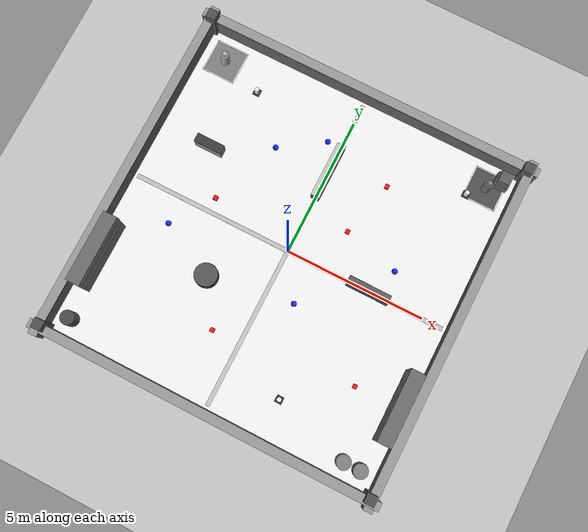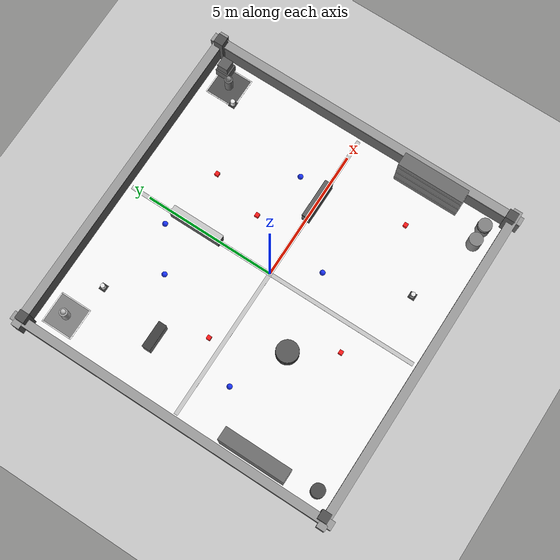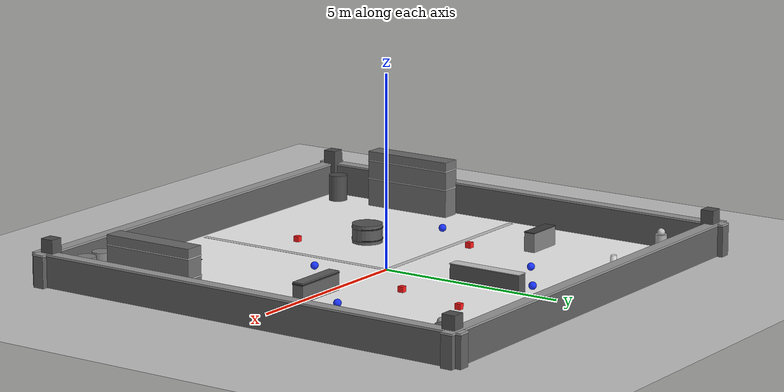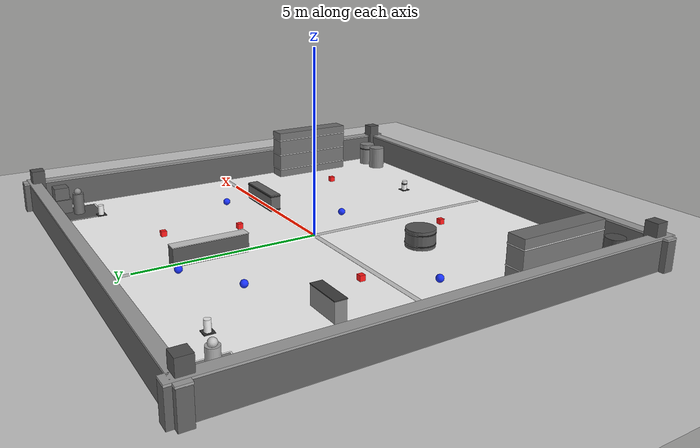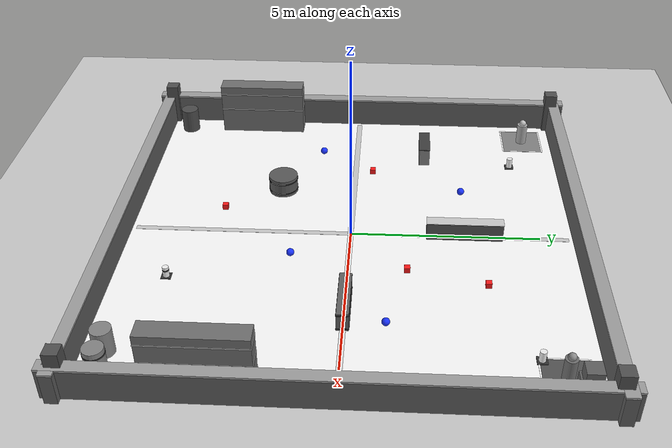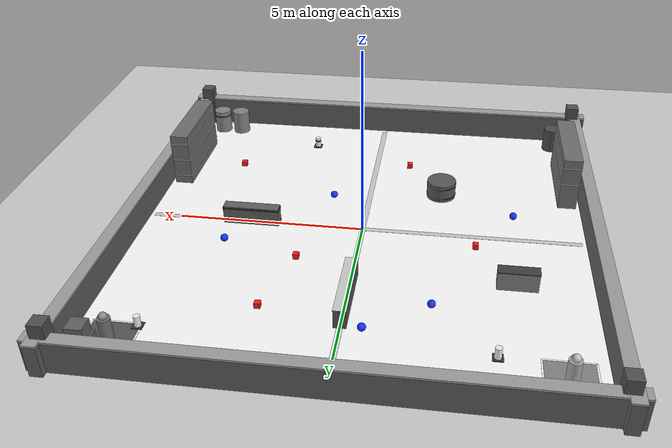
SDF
<?xml version="1.0" ?>
<sdf version="1.6">
  <world name="arena">

    <include><uri>model://ground_plane</uri></include>
    <include><uri>model://sun</uri></include>

    <!-- ==================== LIGHTING ==================== -->
    <scene>
      <ambient>0.506 0.506 0.506 1</ambient>
      <background>0.170 0.170 0.170 1</background>
      <shadows>true</shadows>
    </scene>

    <physics type="ode">
      <max_step_size>0.001</max_step_size>
      <real_time_factor>1</real_time_factor>
      <real_time_update_rate>1000</real_time_update_rate>
    </physics>

    <!-- ==================== WAREHOUSE FLOOR ==================== -->
    <model name="warehouse_floor"><static>true</static>
      <link name="link">
        <visual name="v">
          <geometry><box><size>12.3 12.3 0.002</size></box></geometry>
          <material>
            <ambient>1 1 1 1</ambient>
            <diffuse>1 1 1 1</diffuse>
            <specular>0.1 0.1 0.1 1</specular>
          </material>
        </visual>
      </link>
      <pose>0 0 0.001 0 0 0</pose>
    </model>

    <!-- Yellow safety stripes -->
    <model name="stripe_h"><static>true</static>
      <link name="link">
        <visual name="v"><geometry><box><size>11.5 0.15 0.004</size></box></geometry>
          <material><ambient>0.694 0.694 0.694 1</ambient><diffuse>0.798 0.798 0.798 1</diffuse></material>
        </visual>
      </link>
      <pose>0 0 0.003 0 0 0</pose>
    </model>
    <model name="stripe_v"><static>true</static>
      <link name="link">
        <visual name="v"><geometry><box><size>0.15 11.5 0.004</size></box></geometry>
          <material><ambient>0.694 0.694 0.694 1</ambient><diffuse>0.798 0.798 0.798 1</diffuse></material>
        </visual>
      </link>
      <pose>0 0 0.003 0 0 0</pose>
    </model>

    <!-- ==================== BOUNDARY WALLS (dark slate) ==================== -->
    <model name="wall_north"><static>true</static>
      <link name="link">
        <collision name="c"><geometry><box><size>12.6 0.3 0.8</size></box></geometry></collision>
        <visual name="v"><geometry><box><size>12.6 0.3 0.8</size></box></geometry>
          <material><ambient>0.276 0.276 0.276 1</ambient><diffuse>0.376 0.376 0.376 1</diffuse><specular>0.300 0.300 0.300 1</specular></material>
        </visual>
      </link>
      <pose>0 6 0.4 0 0 0</pose>
    </model>
    <model name="wall_south"><static>true</static>
      <link name="link">
        <collision name="c"><geometry><box><size>12.6 0.3 0.8</size></box></geometry></collision>
        <visual name="v"><geometry><box><size>12.6 0.3 0.8</size></box></geometry>
          <material><ambient>0.276 0.276 0.276 1</ambient><diffuse>0.376 0.376 0.376 1</diffuse><specular>0.300 0.300 0.300 1</specular></material>
        </visual>
      </link>
      <pose>0 -6 0.4 0 0 0</pose>
    </model>
    <model name="wall_east"><static>true</static>
      <link name="link">
        <collision name="c"><geometry><box><size>0.3 12.6 0.8</size></box></geometry></collision>
        <visual name="v"><geometry><box><size>0.3 12.6 0.8</size></box></geometry>
          <material><ambient>0.276 0.276 0.276 1</ambient><diffuse>0.376 0.376 0.376 1</diffuse><specular>0.300 0.300 0.300 1</specular></material>
        </visual>
      </link>
      <pose>6 0 0.4 0 0 0</pose>
    </model>
    <model name="wall_west"><static>true</static>
      <link name="link">
        <collision name="c"><geometry><box><size>0.3 12.6 0.8</size></box></geometry></collision>
        <visual name="v"><geometry><box><size>0.3 12.6 0.8</size></box></geometry>
          <material><ambient>0.276 0.276 0.276 1</ambient><diffuse>0.376 0.376 0.376 1</diffuse><specular>0.300 0.300 0.300 1</specular></material>
        </visual>
      </link>
      <pose>-6 0 0.4 0 0 0</pose>
    </model>

    <!-- Orange wall caps (far from any cube/sphere & distinct hue) -->
    <model name="wall_top_n"><static>true</static>
      <link name="link">
        <visual name="v"><geometry><box><size>12.6 0.32 0.05</size></box></geometry>
          <material><ambient>0.518 0.518 0.518 1</ambient><diffuse>0.628 0.628 0.628 1</diffuse></material>
        </visual>
      </link>
      <pose>0 6 0.82 0 0 0</pose>
    </model>
    <model name="wall_top_s"><static>true</static>
      <link name="link">
        <visual name="v"><geometry><box><size>12.6 0.32 0.05</size></box></geometry>
          <material><ambient>0.518 0.518 0.518 1</ambient><diffuse>0.628 0.628 0.628 1</diffuse></material>
        </visual>
      </link>
      <pose>0 -6 0.82 0 0 0</pose>
    </model>
    <model name="wall_top_e"><static>true</static>
      <link name="link">
        <visual name="v"><geometry><box><size>0.32 12.6 0.05</size></box></geometry>
          <material><ambient>0.518 0.518 0.518 1</ambient><diffuse>0.628 0.628 0.628 1</diffuse></material>
        </visual>
      </link>
      <pose>6 0 0.82 0 0 0</pose>
    </model>
    <model name="wall_top_w"><static>true</static>
      <link name="link">
        <visual name="v"><geometry><box><size>0.32 12.6 0.05</size></box></geometry>
          <material><ambient>0.518 0.518 0.518 1</ambient><diffuse>0.628 0.628 0.628 1</diffuse></material>
        </visual>
      </link>
      <pose>-6 0 0.82 0 0 0</pose>
    </model>

    <!-- Corner pillars (charcoal) -->
    <model name="pillar_ne"><static>true</static>
      <link name="link">
        <collision name="c"><geometry><box><size>0.35 0.35 1.2</size></box></geometry></collision>
        <visual name="v"><geometry><box><size>0.35 0.35 1.2</size></box></geometry>
          <material><ambient>0.200 0.200 0.200 1</ambient><diffuse>0.321 0.321 0.321 1</diffuse></material>
        </visual>
      </link>
      <pose>5.9 5.9 0.6 0 0 0</pose>
    </model>
    <model name="pillar_nw"><static>true</static>
      <link name="link">
        <collision name="c"><geometry><box><size>0.35 0.35 1.2</size></box></geometry></collision>
        <visual name="v"><geometry><box><size>0.35 0.35 1.2</size></box></geometry>
          <material><ambient>0.200 0.200 0.200 1</ambient><diffuse>0.321 0.321 0.321 1</diffuse></material>
        </visual>
      </link>
      <pose>-5.9 5.9 0.6 0 0 0</pose>
    </model>
    <model name="pillar_se"><static>true</static>
      <link name="link">
        <collision name="c"><geometry><box><size>0.35 0.35 1.2</size></box></geometry></collision>
        <visual name="v"><geometry><box><size>0.35 0.35 1.2</size></box></geometry>
          <material><ambient>0.200 0.200 0.200 1</ambient><diffuse>0.321 0.321 0.321 1</diffuse></material>
        </visual>
      </link>
      <pose>5.9 -5.9 0.6 0 0 0</pose>
    </model>
    <model name="pillar_sw"><static>true</static>
      <link name="link">
        <collision name="c"><geometry><box><size>0.35 0.35 1.2</size></box></geometry></collision>
        <visual name="v"><geometry><box><size>0.35 0.35 1.2</size></box></geometry>
          <material><ambient>0.200 0.200 0.200 1</ambient><diffuse>0.321 0.321 0.321 1</diffuse></material>
        </visual>
      </link>
      <pose>-5.9 -5.9 0.6 0 0 0</pose>
    </model>

    <!-- ==================== OBSTACLES (color-safe) ==================== -->
    <!-- obs_box_1: Wooden crate — BROWN (safe) -->
    <model name="obs_box_1"><static>true</static>
      <link name="link">
        <collision name="c"><geometry><box><size>1.5 0.3 0.5</size></box></geometry></collision>
        <visual name="v"><geometry><box><size>1.5 0.3 0.5</size></box></geometry>
          <material><ambient>0.278 0.278 0.278 1</ambient><diffuse>0.387 0.387 0.387 1</diffuse></material>
        </visual>
        <visual name="band1"><pose>0 0 0.2 0 0 0</pose>
          <geometry><box><size>1.52 0.32 0.03</size></box></geometry>
          <material><ambient>0.120 0.120 0.120 1</ambient><diffuse>0.200 0.200 0.200 1</diffuse></material>
        </visual>
        <visual name="band2"><pose>0 0 -0.2 0 0 0</pose>
          <geometry><box><size>1.52 0.32 0.03</size></box></geometry>
          <material><ambient>0.120 0.120 0.120 1</ambient><diffuse>0.200 0.200 0.200 1</diffuse></material>
        </visual>
      </link>
      <pose>3 0 0.25 0 0 0</pose>
    </model>

    <!-- obs_cyl_1: Industrial barrel — GRAPHITE GRAY (no red anymore) -->
    <model name="obs_cyl_1"><static>true</static>
      <link name="link">
        <collision name="c"><geometry><cylinder><radius>0.4</radius><length>0.5</length></cylinder></geometry></collision>
        <visual name="v"><geometry><cylinder><radius>0.4</radius><length>0.5</length></cylinder></geometry>
          <material><ambient>0.220 0.220 0.220 1</ambient><diffuse>0.350 0.350 0.350 1</diffuse><specular>0.500 0.500 0.500 1</specular></material>
        </visual>
        <visual name="ring1"><pose>0 0 0.15 0 0 0</pose>
          <geometry><cylinder><radius>0.41</radius><length>0.03</length></cylinder></geometry>
          <material><ambient>0.100 0.100 0.100 1</ambient><diffuse>0.150 0.150 0.150 1</diffuse></material>
        </visual>
        <visual name="ring2"><pose>0 0 -0.15 0 0 0</pose>
          <geometry><cylinder><radius>0.41</radius><length>0.03</length></cylinder></geometry>
          <material><ambient>0.100 0.100 0.100 1</ambient><diffuse>0.150 0.150 0.150 1</diffuse></material>
        </visual>
      </link>
      <pose>-2 -2 0.25 0 0 0</pose>
    </model>

    <!-- obs_box_2: Shelving unit — DARK TEAL (no blue) -->
    <model name="obs_box_2"><static>true</static>
      <link name="link">
        <collision name="c"><geometry><box><size>0.3 2.0 0.5</size></box></geometry></collision>
        <visual name="v"><geometry><box><size>0.3 2.0 0.5</size></box></geometry>
          <material><ambient>0.242 0.242 0.242 1</ambient><diffuse>0.328 0.328 0.328 1</diffuse><specular>0.300 0.300 0.300 1</specular></material>
        </visual>
        <visual name="shelf_top"><pose>0 0 0.25 0 0 0</pose>
          <geometry><box><size>0.32 2.02 0.02</size></box></geometry>
          <material><ambient>0.665 0.665 0.665 1</ambient><diffuse>0.809 0.809 0.809 1</diffuse></material>
        </visual>
      </link>
      <pose>0 3 0.25 0 0 0</pose>
    </model>

    <!-- obs_box_3: Wooden pallet crate — LIGHT BROWN -->
    <model name="obs_box_3"><static>true</static>
      <link name="link">
        <collision name="c"><geometry><box><size>1.0 0.3 0.5</size></box></geometry></collision>
        <visual name="v"><geometry><box><size>1.0 0.3 0.5</size></box></geometry>
          <material><ambient>0.351 0.351 0.351 1</ambient><diffuse>0.514 0.514 0.514 1</diffuse></material>
        </visual>
        <visual name="plate"><pose>0 0 0.26 0 0 0</pose>
          <geometry><box><size>1.02 0.32 0.02</size></box></geometry>
          <material><ambient>0.150 0.150 0.150 1</ambient><diffuse>0.250 0.250 0.250 1</diffuse></material>
        </visual>
      </link>
      <pose>-4 2 0.25 0 0 0</pose>
    </model>

    <!-- ==================== DECORATIVE PROPS ==================== -->
    <!-- East shelving — SLATE GRAY -->
    <model name="shelf_east_1"><static>true</static>
      <link name="link">
        <collision name="c"><geometry><box><size>0.5 2.5 1.5</size></box></geometry></collision>
        <visual name="v"><geometry><box><size>0.5 2.5 1.5</size></box></geometry>
          <material><ambient>0.300 0.300 0.300 1</ambient><diffuse>0.441 0.441 0.441 1</diffuse></material>
        </visual>
        <visual name="shelf_a"><pose>0 0 0.5 0 0 0</pose>
          <geometry><box><size>0.52 2.52 0.03</size></box></geometry>
          <material><ambient>0.665 0.665 0.665 1</ambient><diffuse>0.809 0.809 0.809 1</diffuse></material>
        </visual>
        <visual name="shelf_b"><pose>0 0 0 0 0 0</pose>
          <geometry><box><size>0.52 2.52 0.03</size></box></geometry>
          <material><ambient>0.665 0.665 0.665 1</ambient><diffuse>0.809 0.809 0.809 1</diffuse></material>
        </visual>
        <visual name="shelf_c"><pose>0 0 -0.5 0 0 0</pose>
          <geometry><box><size>0.52 2.52 0.03</size></box></geometry>
          <material><ambient>0.665 0.665 0.665 1</ambient><diffuse>0.809 0.809 0.809 1</diffuse></material>
        </visual>
      </link>
      <pose>5.5 -3 0.75 0 0 0</pose>
    </model>

    <!-- West shelving — SLATE GRAY -->
    <model name="shelf_west_1"><static>true</static>
      <link name="link">
        <collision name="c"><geometry><box><size>0.5 2.5 1.5</size></box></geometry></collision>
        <visual name="v"><geometry><box><size>0.5 2.5 1.5</size></box></geometry>
          <material><ambient>0.300 0.300 0.300 1</ambient><diffuse>0.441 0.441 0.441 1</diffuse></material>
        </visual>
        <visual name="shelf_a"><pose>0 0 0.5 0 0 0</pose>
          <geometry><box><size>0.52 2.52 0.03</size></box></geometry>
          <material><ambient>0.665 0.665 0.665 1</ambient><diffuse>0.809 0.809 0.809 1</diffuse></material>
        </visual>
        <visual name="shelf_b"><pose>0 0 0 0 0 0</pose>
          <geometry><box><size>0.52 2.52 0.03</size></box></geometry>
          <material><ambient>0.665 0.665 0.665 1</ambient><diffuse>0.809 0.809 0.809 1</diffuse></material>
        </visual>
      </link>
      <pose>-5.5 -3 0.75 0 0 0</pose>
    </model>

    <!-- Deco barrels — OLIVE / PURPLE (no red/blue) -->
    <model name="deco_barrel_1"><static>true</static>
      <link name="link">
        <collision name="c"><geometry><cylinder><radius>0.25</radius><length>0.7</length></cylinder></geometry></collision>
        <visual name="v"><geometry><cylinder><radius>0.25</radius><length>0.7</length></cylinder></geometry>
          <material><ambient>0.378 0.378 0.378 1</ambient><diffuse>0.522 0.522 0.522 1</diffuse><specular>0.300 0.300 0.300 1</specular></material>
        </visual>
        <visual name="ring1"><pose>0 0 0.2 0 0 0</pose>
          <geometry><cylinder><radius>0.26</radius><length>0.03</length></cylinder></geometry>
          <material><ambient>0.100 0.100 0.100 1</ambient><diffuse>0.200 0.200 0.200 1</diffuse></material>
        </visual>
      </link>
      <pose>5.3 -5.3 0.35 0 0 0</pose>
    </model>
    <model name="deco_barrel_2"><static>true</static>
      <link name="link">
        <collision name="c"><geometry><cylinder><radius>0.25</radius><length>0.7</length></cylinder></geometry></collision>
        <visual name="v"><geometry><cylinder><radius>0.25</radius><length>0.7</length></cylinder></geometry>
          <material><ambient>0.378 0.378 0.378 1</ambient><diffuse>0.522 0.522 0.522 1</diffuse><specular>0.300 0.300 0.300 1</specular></material>
        </visual>
      </link>
      <pose>4.7 -5.3 0.35 0 0 0</pose>
    </model>
    <model name="deco_barrel_3"><static>true</static>
      <link name="link">
        <collision name="c"><geometry><cylinder><radius>0.25</radius><length>0.7</length></cylinder></geometry></collision>
        <visual name="v"><geometry><cylinder><radius>0.25</radius><length>0.7</length></cylinder></geometry>
          <material><ambient>0.209 0.209 0.209 1</ambient><diffuse>0.300 0.300 0.300 1</diffuse><specular>0.300 0.300 0.300 1</specular></material>
        </visual>
      </link>
      <pose>-5.3 -5.3 0.35 0 0 0</pose>
    </model>

    <!-- Stacked crates — BROWN -->
    <model name="deco_crate_stack_1"><static>true</static>
      <link name="link">
        <collision name="c"><geometry><box><size>0.5 0.5 0.4</size></box></geometry></collision>
        <visual name="v"><geometry><box><size>0.5 0.5 0.4</size></box></geometry>
          <material><ambient>0.278 0.278 0.278 1</ambient><diffuse>0.387 0.387 0.387 1</diffuse></material>
        </visual>
      </link>
      <pose>5.4 5.4 0.2 0 0 0</pose>
    </model>
    <model name="deco_crate_stack_2"><static>true</static>
      <link name="link">
        <collision name="c"><geometry><box><size>0.4 0.4 0.35</size></box></geometry></collision>
        <visual name="v"><geometry><box><size>0.4 0.4 0.35</size></box></geometry>
          <material><ambient>0.278 0.278 0.278 1</ambient><diffuse>0.387 0.387 0.387 1</diffuse></material>
        </visual>
      </link>
      <pose>5.4 5.4 0.575 0 0 0</pose>
    </model>

    <!-- Traffic cones — WHITE + BLACK base (no orange, no red!) -->
    <model name="cone_1"><static>true</static>
      <link name="link">
        <collision name="c"><geometry><cylinder><radius>0.12</radius><length>0.3</length></cylinder></geometry></collision>
        <visual name="base"><geometry><box><size>0.25 0.25 0.02</size></box></geometry>
          <material><ambient>0.100 0.100 0.100 1</ambient><diffuse>0.200 0.200 0.200 1</diffuse></material>
        </visual>
        <visual name="body"><pose>0 0 0.15 0 0 0</pose>
          <geometry><cylinder><radius>0.08</radius><length>0.28</length></cylinder></geometry>
          <material><ambient>0.800 0.800 0.800 1</ambient><diffuse>0.950 0.950 0.950 1</diffuse></material>
        </visual>
        <visual name="stripe"><pose>0 0 0.2 0 0 0</pose>
          <geometry><cylinder><radius>0.085</radius><length>0.04</length></cylinder></geometry>
          <material><ambient>0.100 0.100 0.100 1</ambient><diffuse>0.200 0.200 0.200 1</diffuse></material>
        </visual>
      </link>
      <pose>2.0 -4.5 0.01 0 0 0</pose>
    </model>
    <model name="cone_2"><static>true</static>
      <link name="link">
        <collision name="c"><geometry><cylinder><radius>0.12</radius><length>0.3</length></cylinder></geometry></collision>
        <visual name="base"><geometry><box><size>0.25 0.25 0.02</size></box></geometry>
          <material><ambient>0.100 0.100 0.100 1</ambient><diffuse>0.200 0.200 0.200 1</diffuse></material>
        </visual>
        <visual name="body"><pose>0 0 0.15 0 0 0</pose>
          <geometry><cylinder><radius>0.08</radius><length>0.28</length></cylinder></geometry>
          <material><ambient>0.800 0.800 0.800 1</ambient><diffuse>0.950 0.950 0.950 1</diffuse></material>
        </visual>
      </link>
      <pose>-3.5 4.5 0.01 0 0 0</pose>
    </model>
    <model name="cone_3"><static>true</static>
      <link name="link">
        <collision name="c"><geometry><cylinder><radius>0.12</radius><length>0.3</length></cylinder></geometry></collision>
        <visual name="base"><geometry><box><size>0.25 0.25 0.02</size></box></geometry>
          <material><ambient>0.100 0.100 0.100 1</ambient><diffuse>0.200 0.200 0.200 1</diffuse></material>
        </visual>
        <visual name="body"><pose>0 0 0.15 0 0 0</pose>
          <geometry><cylinder><radius>0.08</radius><length>0.28</length></cylinder></geometry>
          <material><ambient>0.800 0.800 0.800 1</ambient><diffuse>0.950 0.950 0.950 1</diffuse></material>
        </visual>
      </link>
      <pose>4.5 4.5 0.01 0 0 0</pose>
    </model>

    <!-- ==================== RED CUBES — PURE RED (UNIQUE) ==================== -->
    <model name="cube_1"><static>true</static>
      <link name="link">

        <visual name="v"><geometry><box><size>0.15 0.15 0.15</size></box></geometry>
          <material>
            <ambient>0.9 0.05 0.05 1</ambient>
            <diffuse>1.0 0.1 0.1 1</diffuse>
            <specular>0.5 0.5 0.5 1</specular>
            <emissive>0.25 0.0 0.0 1</emissive>
          </material>
        </visual>
      </link>
      <pose>1.5 1.5 0.075 0 0 0</pose>
    </model>
    <model name="cube_2"><static>true</static>
      <link name="link">

        <visual name="v"><geometry><box><size>0.15 0.15 0.15</size></box></geometry>
          <material>
            <ambient>0.9 0.05 0.05 1</ambient>
            <diffuse>1.0 0.1 0.1 1</diffuse>
            <specular>0.5 0.5 0.5 1</specular>
            <emissive>0.25 0.0 0.0 1</emissive>
          </material>
        </visual>
      </link>
      <pose>-3.0 0.5 0.075 0 0 0</pose>
    </model>
    <model name="cube_3"><static>true</static>
      <link name="link">

        <visual name="v"><geometry><box><size>0.15 0.15 0.15</size></box></geometry>
          <material>
            <ambient>0.9 0.05 0.05 1</ambient>
            <diffuse>1.0 0.1 0.1 1</diffuse>
            <specular>0.5 0.5 0.5 1</specular>
            <emissive>0.25 0.0 0.0 1</emissive>
          </material>
        </visual>
      </link>
      <pose>4.0 -3.0 0.075 0 0 0</pose>
    </model>
    <model name="cube_4"><static>true</static>
      <link name="link">

        <visual name="v"><geometry><box><size>0.15 0.15 0.15</size></box></geometry>
          <material>
            <ambient>0.9 0.05 0.05 1</ambient>
            <diffuse>1.0 0.1 0.1 1</diffuse>
            <specular>0.5 0.5 0.5 1</specular>
            <emissive>0.25 0.0 0.0 1</emissive>
          </material>
        </visual>
      </link>
      <pose>-1.0 -3.5 0.075 0 0 0</pose>
    </model>
    <model name="cube_5"><static>true</static>
      <link name="link">

        <visual name="v"><geometry><box><size>0.15 0.15 0.15</size></box></geometry>
          <material>
            <ambient>0.9 0.05 0.05 1</ambient>
            <diffuse>1.0 0.1 0.1 1</diffuse>
            <specular>0.5 0.5 0.5 1</specular>
            <emissive>0.25 0.0 0.0 1</emissive>
          </material>
        </visual>
      </link>
      <pose>2.0 3.5 0.075 0 0 0</pose>
    </model>

    <!-- ==================== BLUE SPHERES — PURE BLUE (UNIQUE) ==================== -->
    <model name="sphere_1"><static>true</static>
      <link name="link">

        <visual name="v"><geometry><sphere><radius>0.10</radius></sphere></geometry>
          <material>
            <ambient>0.05 0.1 0.9 1</ambient>
            <diffuse>0.1 0.2 1.0 1</diffuse>
            <specular>0.6 0.6 0.8 1</specular>
            <emissive>0.0 0.0 0.3 1</emissive>
          </material>
        </visual>
      </link>
      <pose>-2.0 3.0 0.10 0 0 0</pose>
    </model>
    <model name="sphere_2"><static>true</static>
      <link name="link">

        <visual name="v"><geometry><sphere><radius>0.10</radius></sphere></geometry>
          <material>
            <ambient>0.05 0.1 0.9 1</ambient>
            <diffuse>0.1 0.2 1.0 1</diffuse>
            <specular>0.6 0.6 0.8 1</specular>
            <emissive>0.0 0.0 0.3 1</emissive>
          </material>
        </visual>
      </link>
      <pose>1.0 -1.5 0.10 0 0 0</pose>
    </model>
    <model name="sphere_3"><static>true</static>
      <link name="link">

        <visual name="v"><geometry><sphere><radius>0.10</radius></sphere></geometry>
          <material>
            <ambient>0.05 0.1 0.9 1</ambient>
            <diffuse>0.1 0.2 1.0 1</diffuse>
            <specular>0.6 0.6 0.8 1</specular>
            <emissive>0.0 0.0 0.3 1</emissive>
          </material>
        </visual>
      </link>
      <pose>-4.0 -1.0 0.10 0 0 0</pose>
    </model>
    <model name="sphere_4"><static>true</static>
      <link name="link">

        <visual name="v"><geometry><sphere><radius>0.10</radius></sphere></geometry>
          <material>
            <ambient>0.05 0.1 0.9 1</ambient>
            <diffuse>0.1 0.2 1.0 1</diffuse>
            <specular>0.6 0.6 0.8 1</specular>
            <emissive>0.0 0.0 0.3 1</emissive>
          </material>
        </visual>
      </link>
      <pose>3.5 1.0 0.10 0 0 0</pose>
    </model>
    <model name="sphere_5"><static>true</static>
      <link name="link">

        <visual name="v"><geometry><sphere><radius>0.10</radius></sphere></geometry>
          <material>
            <ambient>0.05 0.1 0.9 1</ambient>
            <diffuse>0.1 0.2 1.0 1</diffuse>
            <specular>0.6 0.6 0.8 1</specular>
            <emissive>0.0 0.0 0.3 1</emissive>
          </material>
        </visual>
      </link>
      <pose>-0.5 4.0 0.10 0 0 0</pose>
    </model>

    <!-- ==================== BASKETS (MAGENTA + CYAN — unique hues) ==================== -->
    <!-- Cube basket — MAGENTA/PINK marker at (5, 5) -->
    <model name="basket_cube_marker"><static>true</static>
      <link name="link">
        <visual name="v"><geometry><cylinder><radius>0.15</radius><length>0.6</length></cylinder></geometry>
          <material>
            <ambient>0.355 0.355 0.355 1</ambient>
            <diffuse>0.441 0.441 0.441 1</diffuse>
            <specular>0.300 0.300 0.300 1</specular>
            <emissive>0.112 0.112 0.112 1</emissive>
          </material>
        </visual>
        <visual name="top_ball"><pose>0 0 0.35 0 0 0</pose>
          <geometry><sphere><radius>0.1</radius></sphere></geometry>
          <material><ambient>0.455 0.455 0.455 1</ambient><diffuse>0.555 0.555 0.555 1</diffuse><emissive>0.142 0.142 0.142 1</emissive></material>
        </visual>
      </link>
      <pose>5 5 0.3 0 0 0</pose>
    </model>
    <model name="basket_cube_floor"><static>true</static>
      <link name="link">
        <visual name="v"><geometry><box><size>1.2 1.2 0.005</size></box></geometry>
          <material>
            <ambient>0.234 0.234 0.234 1</ambient>
            <diffuse>0.334 0.334 0.334 1</diffuse>
            <emissive>0.071 0.071 0.071 1</emissive>
          </material>
        </visual>
        <visual name="border_n"><pose>0 0.58 0.002 0 0 0</pose>
          <geometry><box><size>1.2 0.04 0.006</size></box></geometry>
          <material><ambient>0.900 0.900 0.900 1</ambient><diffuse>1.000 1.000 1.000 1</diffuse></material>
        </visual>
        <visual name="border_s"><pose>0 -0.58 0.002 0 0 0</pose>
          <geometry><box><size>1.2 0.04 0.006</size></box></geometry>
          <material><ambient>0.900 0.900 0.900 1</ambient><diffuse>1.000 1.000 1.000 1</diffuse></material>
        </visual>
        <visual name="border_e"><pose>0.58 0 0.002 0 0 0</pose>
          <geometry><box><size>0.04 1.2 0.006</size></box></geometry>
          <material><ambient>0.900 0.900 0.900 1</ambient><diffuse>1.000 1.000 1.000 1</diffuse></material>
        </visual>
        <visual name="border_w"><pose>-0.58 0 0.002 0 0 0</pose>
          <geometry><box><size>0.04 1.2 0.006</size></box></geometry>
          <material><ambient>0.900 0.900 0.900 1</ambient><diffuse>1.000 1.000 1.000 1</diffuse></material>
        </visual>
      </link>
      <pose>5 5 0.003 0 0 0</pose>
    </model>

    <!-- Sphere basket — CYAN marker at (-5, 5) -->
    <model name="basket_sphere_marker"><static>true</static>
      <link name="link">
        <visual name="v"><geometry><cylinder><radius>0.15</radius><length>0.6</length></cylinder></geometry>
          <material>
            <ambient>0.526 0.526 0.526 1</ambient>
            <diffuse>0.661 0.661 0.661 1</diffuse>
            <specular>0.300 0.300 0.300 1</specular>
            <emissive>0.175 0.175 0.175 1</emissive>
          </material>
        </visual>
        <visual name="top_ball"><pose>0 0 0.35 0 0 0</pose>
          <geometry><sphere><radius>0.1</radius></sphere></geometry>
          <material><ambient>0.596 0.596 0.596 1</ambient><diffuse>0.761 0.761 0.761 1</diffuse><emissive>0.210 0.210 0.210 1</emissive></material>
        </visual>
      </link>
      <pose>-5 5 0.3 0 0 0</pose>
    </model>
    <model name="basket_sphere_floor"><static>true</static>
      <link name="link">
        <visual name="v"><geometry><box><size>1.2 1.2 0.005</size></box></geometry>
          <material>
            <ambient>0.350 0.350 0.350 1</ambient>
            <diffuse>0.521 0.521 0.521 1</diffuse>
            <emissive>0.105 0.105 0.105 1</emissive>
          </material>
        </visual>
        <visual name="border_n"><pose>0 0.58 0.002 0 0 0</pose>
          <geometry><box><size>1.2 0.04 0.006</size></box></geometry>
          <material><ambient>0.900 0.900 0.900 1</ambient><diffuse>1.000 1.000 1.000 1</diffuse></material>
        </visual>
        <visual name="border_s"><pose>0 -0.58 0.002 0 0 0</pose>
          <geometry><box><size>1.2 0.04 0.006</size></box></geometry>
          <material><ambient>0.900 0.900 0.900 1</ambient><diffuse>1.000 1.000 1.000 1</diffuse></material>
        </visual>
        <visual name="border_e"><pose>0.58 0 0.002 0 0 0</pose>
          <geometry><box><size>0.04 1.2 0.006</size></box></geometry>
          <material><ambient>0.900 0.900 0.900 1</ambient><diffuse>1.000 1.000 1.000 1</diffuse></material>
        </visual>
        <visual name="border_w"><pose>-0.58 0 0.002 0 0 0</pose>
          <geometry><box><size>0.04 1.2 0.006</size></box></geometry>
          <material><ambient>0.900 0.900 0.900 1</ambient><diffuse>1.000 1.000 1.000 1</diffuse></material>
        </visual>
      </link>
      <pose>-5 5 0.003 0 0 0</pose>
    </model>

  </world>
</sdf>
